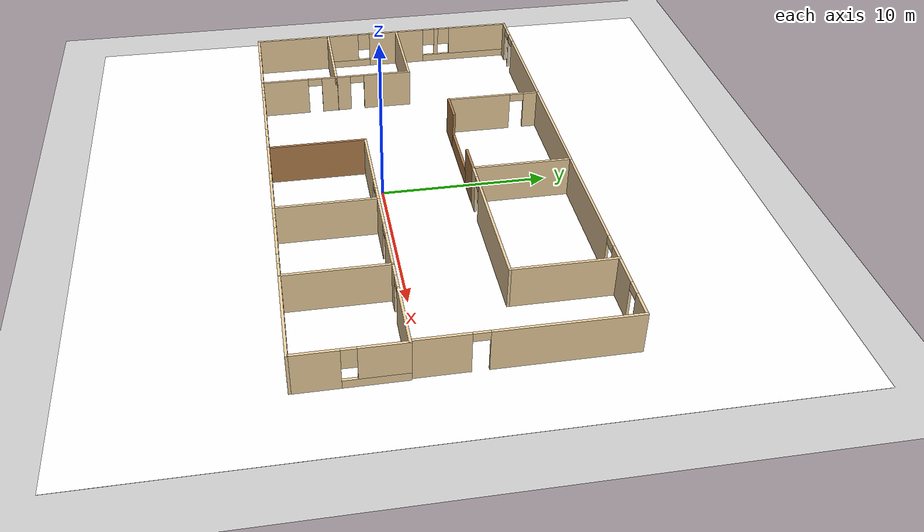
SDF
<sdf version="1.7">
 <world name="default">
  <model name="ground_plane">
   <static>1</static>
   <link name="link">
    <collision name="collision">
     <geometry><plane><normal>0 0 1</normal><size>100 100</size></plane></geometry>
     <surface><friction><ode><mu>100</mu><mu2>50</mu2></ode></friction></surface>
    </collision>
    <visual name="visual">
     <cast_shadows>0</cast_shadows>
     <geometry><plane><normal>0 0 1</normal><size>100 100</size></plane></geometry>
     <material>
      <script><uri>file://media/materials/scripts/gazebo.material</uri><name>Gazebo/Grey</name></script>
     </material>
    </visual>
   </link>
  </model>
  <model name="hospital_world">
   <pose>-0.19624 2.19188 0 0 -0 0</pose>
   <link name="Wall_100">
    <collision name="Wall_100_Collision">
     <geometry><box><size>2 0.15 2.5</size></box></geometry>
     <pose>0 0 1.25 0 -0 0</pose>
    </collision>
    <visual name="Wall_100_Visual">
     <pose>0 0 1.25 0 -0 0</pose>
     <geometry><box><size>2 0.15 2.5</size></box></geometry>
     <material>
      <script><uri>file://media/materials/scripts/gazebo.material</uri><name>Gazebo/Wood</name></script>
      <ambient>1 1 1 1</ambient>
     </material>
     <meta><layer>0</layer></meta>
    </visual>
    <pose>-4.97509 2.92511 0 0 -0 0</pose>
   </link>
   <link name="Wall_102">
    <collision name="Wall_102_Collision">
     <geometry><box><size>2 0.15 2.5</size></box></geometry>
     <pose>0 0 1.25 0 -0 0</pose>
    </collision>
    <visual name="Wall_102_Visual">
     <pose>0 0 1.25 0 -0 0</pose>
     <geometry><box><size>2 0.15 2.5</size></box></geometry>
     <material>
      <script><uri>file://media/materials/scripts/gazebo.material</uri><name>Gazebo/Wood</name></script>
      <ambient>1 1 1 1</ambient>
     </material>
     <meta><layer>0</layer></meta>
    </visual>
    <pose>1.02491 2.92511 0 0 -0 3.14159</pose>
   </link>
   <link name="Wall_104">
    <collision name="Wall_104_Collision">
     <geometry><box><size>4.3 0.15 1</size></box></geometry>
     <pose>0 0 0.5 0 -0 0</pose>
    </collision>
    <visual name="Wall_104_Visual">
     <pose>0 0 0.5 0 -0 0</pose>
     <geometry><box><size>4.3 0.15 1</size></box></geometry>
     <material>
      <script><uri>file://media/materials/scripts/gazebo.material</uri><name>Gazebo/Wood</name></script>
      <ambient>1 1 1 1</ambient>
     </material>
     <meta><layer>0</layer></meta>
    </visual>
    <pose>-1.97509 2.92511 0 0 -0 0</pose>
   </link>
   <link name="Wall_17">
    <collision name="Wall_17_Collision">
     <geometry><box><size>6 0.15 2.5</size></box></geometry>
     <pose>0 0 1.25 0 -0 0</pose>
    </collision>
    <visual name="Wall_17_Visual">
     <pose>0 0 1.25 0 -0 0</pose>
     <geometry><box><size>6 0.15 2.5</size></box></geometry>
     <material>
      <script><uri>file://media/materials/scripts/gazebo.material</uri><name>Gazebo/Grey</name></script>
      <ambient>0.921569 0.807843 0.615686 1</ambient>
     </material>
     <meta><layer>0</layer></meta>
    </visual>
    <pose>9.9 -5.85 0 0 -0 1.57076</pose>
   </link>
   <link name="Wall_21">
    <pose>6.975 -8.775 0 0 -0 -3.14155</pose>
    <visual name="Wall_21_Visual_0">
     <pose>-2.4903 0 1.25 0 -0 0</pose>
     <geometry><box><size>1.0194 0.15 2.5</size></box></geometry>
     <material>
      <script><uri>file://media/materials/scripts/gazebo.material</uri><name>Gazebo/Grey</name></script>
      <ambient>0.921569 0.807843 0.615686 1</ambient>
     </material>
     <meta><layer>0</layer></meta>
    </visual>
    <collision name="Wall_21_Collision_0">
     <geometry><box><size>1.0194 0.15 2.5</size></box></geometry>
     <pose>-2.4903 0 1.25 0 -0 0</pose>
    </collision>
    <visual name="Wall_21_Visual_1">
     <pose>2.48512 0 1.25 0 -0 0</pose>
     <geometry><box><size>1.02976 0.15 2.5</size></box></geometry>
     <material>
      <script><uri>file://media/materials/scripts/gazebo.material</uri><name>Gazebo/Grey</name></script>
      <ambient>0.921569 0.807843 0.615686 1</ambient>
     </material>
     <meta><layer>0</layer></meta>
    </visual>
    <collision name="Wall_21_Collision_1">
     <geometry><box><size>1.02976 0.15 2.5</size></box></geometry>
     <pose>2.48512 0 1.25 0 -0 0</pose>
    </collision>
    <visual name="Wall_21_Visual_2">
     <pose>-0.455184 0 0.25 0 -0 0</pose>
     <geometry><box><size>3.05084 0.15 0.5</size></box></geometry>
     <material>
      <script><uri>file://media/materials/scripts/gazebo.material</uri><name>Gazebo/Grey</name></script>
      <ambient>0.921569 0.807843 0.615686 1</ambient>
     </material>
     <meta><layer>0</layer></meta>
    </visual>
    <collision name="Wall_21_Collision_2">
     <geometry><box><size>3.05084 0.15 0.5</size></box></geometry>
     <pose>-0.455184 0 0.25 0 -0 0</pose>
    </collision>
    <visual name="Wall_21_Visual_3">
     <pose>-0.055184 0 1.5 0 -0 0</pose>
     <geometry><box><size>2.25084 0.15 2</size></box></geometry>
     <material>
      <script><uri>file://media/materials/scripts/gazebo.material</uri><name>Gazebo/Grey</name></script>
      <ambient>0.921569 0.807843 0.615686 1</ambient>
     </material>
     <meta><layer>0</layer></meta>
    </visual>
    <collision name="Wall_21_Collision_3">
     <geometry><box><size>2.25084 0.15 2</size></box></geometry>
     <pose>-0.055184 0 1.5 0 -0 0</pose>
    </collision>
    <visual name="Wall_21_Visual_4">
     <pose>-1.5806 0 1.9 0 -0 0</pose>
     <geometry><box><size>0.8 0.15 1.2</size></box></geometry>
     <material>
      <script><uri>file://media/materials/scripts/gazebo.material</uri><name>Gazebo/Grey</name></script>
      <ambient>0.921569 0.807843 0.615686 1</ambient>
     </material>
     <meta><layer>0</layer></meta>
    </visual>
    <collision name="Wall_21_Collision_4">
     <geometry><box><size>0.8 0.15 1.2</size></box></geometry>
     <pose>-1.5806 0 1.9 0 -0 0</pose>
    </collision>
    <visual name="Wall_21_Visual_5">
     <pose>1.52024 0 2.25 0 -0 0</pose>
     <geometry><box><size>0.9 0.15 0.5</size></box></geometry>
     <material>
      <script><uri>file://media/materials/scripts/gazebo.material</uri><name>Gazebo/Grey</name></script>
      <ambient>0.921569 0.807843 0.615686 1</ambient>
     </material>
     <meta><layer>0</layer></meta>
    </visual>
    <collision name="Wall_21_Collision_5">
     <geometry><box><size>0.9 0.15 0.5</size></box></geometry>
     <pose>1.52024 0 2.25 0 -0 0</pose>
    </collision>
   </link>
   <link name="Wall_22">
    <collision name="Wall_22_Collision">
     <geometry><box><size>6 0.15 2.5</size></box></geometry>
     <pose>0 0 1.25 0 -0 0</pose>
    </collision>
    <visual name="Wall_22_Visual">
     <pose>0 0 1.25 0 -0 0</pose>
     <geometry><box><size>6 0.15 2.5</size></box></geometry>
     <material>
      <script><uri>file://media/materials/scripts/gazebo.material</uri><name>Gazebo/Grey</name></script>
      <ambient>0.921569 0.807843 0.615686 1</ambient>
     </material>
     <meta><layer>0</layer></meta>
    </visual>
    <pose>4.05009 -5.85011 0 0 -0 1.5708</pose>
   </link>
   <link name="Wall_23">
    <pose>6.97509 -2.92511 0 0 -0 0</pose>
    <visual name="Wall_23_Visual_0">
     <pose>-1.77968 0 1.25 0 -0 0</pose>
     <geometry><box><size>2.44064 0.15 2.5</size></box></geometry>
     <material>
      <script><uri>file://media/materials/scripts/gazebo.material</uri><name>Gazebo/Grey</name></script>
      <ambient>0.921569 0.807843 0.615686 1</ambient>
     </material>
     <meta><layer>0</layer></meta>
    </visual>
    <collision name="Wall_23_Collision_0">
     <geometry><box><size>2.44064 0.15 2.5</size></box></geometry>
     <pose>-1.77968 0 1.25 0 -0 0</pose>
    </collision>
    <visual name="Wall_23_Visual_1">
     <pose>1.67032 0 1.25 0 -0 0</pose>
     <geometry><box><size>2.65936 0.15 2.5</size></box></geometry>
     <material>
      <script><uri>file://media/materials/scripts/gazebo.material</uri><name>Gazebo/Grey</name></script>
      <ambient>0.921569 0.807843 0.615686 1</ambient>
     </material>
     <meta><layer>0</layer></meta>
    </visual>
    <collision name="Wall_23_Collision_1">
     <geometry><box><size>2.65936 0.15 2.5</size></box></geometry>
     <pose>1.67032 0 1.25 0 -0 0</pose>
    </collision>
    <visual name="Wall_23_Visual_2">
     <pose>-0.10936 0 2.25 0 -0 0</pose>
     <geometry><box><size>0.9 0.15 0.5</size></box></geometry>
     <material>
      <script><uri>file://media/materials/scripts/gazebo.material</uri><name>Gazebo/Grey</name></script>
      <ambient>0.921569 0.807843 0.615686 1</ambient>
     </material>
     <meta><layer>0</layer></meta>
    </visual>
    <collision name="Wall_23_Collision_2">
     <geometry><box><size>0.9 0.15 0.5</size></box></geometry>
     <pose>-0.10936 0 2.25 0 -0 0</pose>
    </collision>
   </link>
   <link name="Wall_25">
    <pose>1.00009 -8.77511 0 0 -0 3.14159</pose>
    <visual name="Wall_25_Visual_0">
     <pose>-1.79812 0 1.25 0 -0 0</pose>
     <geometry><box><size>2.65377 0.15 2.5</size></box></geometry>
     <material>
      <script><uri>file://media/materials/scripts/gazebo.material</uri><name>Gazebo/Grey</name></script>
      <ambient>0.921569 0.807843 0.615686 1</ambient>
     </material>
     <meta><layer>0</layer></meta>
    </visual>
    <collision name="Wall_25_Collision_0">
     <geometry><box><size>2.65377 0.15 2.5</size></box></geometry>
     <pose>-1.79812 0 1.25 0 -0 0</pose>
    </collision>
    <visual name="Wall_25_Visual_1">
     <pose>1.32688 0 0.25 0 -0 0</pose>
     <geometry><box><size>3.59623 0.15 0.5</size></box></geometry>
     <material>
      <script><uri>file://media/materials/scripts/gazebo.material</uri><name>Gazebo/Grey</name></script>
      <ambient>0.921569 0.807843 0.615686 1</ambient>
     </material>
     <meta><layer>0</layer></meta>
    </visual>
    <collision name="Wall_25_Collision_1">
     <geometry><box><size>3.59623 0.15 0.5</size></box></geometry>
     <pose>1.32688 0 0.25 0 -0 0</pose>
    </collision>
    <visual name="Wall_25_Visual_2">
     <pose>1.72688 0 1.5 0 -0 0</pose>
     <geometry><box><size>2.79623 0.15 2</size></box></geometry>
     <material>
      <script><uri>file://media/materials/scripts/gazebo.material</uri><name>Gazebo/Grey</name></script>
      <ambient>0.921569 0.807843 0.615686 1</ambient>
     </material>
     <meta><layer>0</layer></meta>
    </visual>
    <collision name="Wall_25_Collision_2">
     <geometry><box><size>2.79623 0.15 2</size></box></geometry>
     <pose>1.72688 0 1.5 0 -0 0</pose>
    </collision>
    <visual name="Wall_25_Visual_3">
     <pose>-0.071231 0 1.9 0 -0 0</pose>
     <geometry><box><size>0.8 0.15 1.2</size></box></geometry>
     <material>
      <script><uri>file://media/materials/scripts/gazebo.material</uri><name>Gazebo/Grey</name></script>
      <ambient>0.921569 0.807843 0.615686 1</ambient>
     </material>
     <meta><layer>0</layer></meta>
    </visual>
    <collision name="Wall_25_Collision_3">
     <geometry><box><size>0.8 0.15 1.2</size></box></geometry>
     <pose>-0.071231 0 1.9 0 -0 0</pose>
    </collision>
   </link>
   <link name="Wall_26">
    <collision name="Wall_26_Collision">
     <geometry><box><size>6 0.15 2.5</size></box></geometry>
     <pose>0 0 1.25 0 -0 0</pose>
    </collision>
    <visual name="Wall_26_Visual">
     <pose>0 0 1.25 0 -0 0</pose>
     <geometry><box><size>6 0.15 2.5</size></box></geometry>
     <material>
      <script><uri>file://media/materials/scripts/gazebo.material</uri><name>Gazebo/Wood</name></script>
      <ambient>0.921569 0.807843 0.615686 1</ambient>
     </material>
     <meta><layer>0</layer></meta>
    </visual>
    <pose>-2.04991 -5.85011 0 0 -0 1.5708</pose>
   </link>
   <link name="Wall_27">
    <pose>1.00009 -2.92511 0 0 -0 0</pose>
    <visual name="Wall_27_Visual_0">
     <pose>-0.959565 0 1.25 0 -0 0</pose>
     <geometry><box><size>4.33087 0.15 2.5</size></box></geometry>
     <material>
      <script><uri>file://media/materials/scripts/gazebo.material</uri><name>Gazebo/Grey</name></script>
      <ambient>0.921569 0.807843 0.615686 1</ambient>
     </material>
     <meta><layer>0</layer></meta>
    </visual>
    <collision name="Wall_27_Collision_0">
     <geometry><box><size>4.33087 0.15 2.5</size></box></geometry>
     <pose>-0.959565 0 1.25 0 -0 0</pose>
    </collision>
    <visual name="Wall_27_Visual_1">
     <pose>2.61544 0 1.25 0 -0 0</pose>
     <geometry><box><size>1.01913 0.15 2.5</size></box></geometry>
     <material>
      <script><uri>file://media/materials/scripts/gazebo.material</uri><name>Gazebo/Grey</name></script>
      <ambient>0.921569 0.807843 0.615686 1</ambient>
     </material>
     <meta><layer>0</layer></meta>
    </visual>
    <collision name="Wall_27_Collision_1">
     <geometry><box><size>1.01913 0.15 2.5</size></box></geometry>
     <pose>2.61544 0 1.25 0 -0 0</pose>
    </collision>
    <visual name="Wall_27_Visual_2">
     <pose>1.65587 0 2.25 0 -0 0</pose>
     <geometry><box><size>0.9 0.15 0.5</size></box></geometry>
     <material>
      <script><uri>file://media/materials/scripts/gazebo.material</uri><name>Gazebo/Grey</name></script>
      <ambient>0.921569 0.807843 0.615686 1</ambient>
     </material>
     <meta><layer>0</layer></meta>
    </visual>
    <collision name="Wall_27_Collision_2">
     <geometry><box><size>0.9 0.15 0.5</size></box></geometry>
     <pose>1.65587 0 2.25 0 -0 0</pose>
    </collision>
   </link>
   <link name="Wall_39">
    <pose>-5.97491 -8.77511 0 0 -0 3.14159</pose>
    <visual name="Wall_39_Visual_0">
     <pose>-3.31601 0 1.25 0 -0 0</pose>
     <geometry><box><size>1.36798 0.15 2.5</size></box></geometry>
     <material>
      <script><uri>file://media/materials/scripts/gazebo.material</uri><name>Gazebo/Grey</name></script>
      <ambient>0.921569 0.807843 0.615686 1</ambient>
     </material>
     <meta><layer>0</layer></meta>
    </visual>
    <collision name="Wall_39_Collision_0">
     <geometry><box><size>1.36798 0.15 2.5</size></box></geometry>
     <pose>-3.31601 0 1.25 0 -0 0</pose>
    </collision>
    <visual name="Wall_39_Visual_1">
     <pose>3.47248 0 1.25 0 -0 0</pose>
     <geometry><box><size>1.05505 0.15 2.5</size></box></geometry>
     <material>
      <script><uri>file://media/materials/scripts/gazebo.material</uri><name>Gazebo/Grey</name></script>
      <ambient>0.921569 0.807843 0.615686 1</ambient>
     </material>
     <meta><layer>0</layer></meta>
    </visual>
    <collision name="Wall_39_Collision_1">
     <geometry><box><size>1.05505 0.15 2.5</size></box></geometry>
     <pose>3.47248 0 1.25 0 -0 0</pose>
    </collision>
    <visual name="Wall_39_Visual_2">
     <pose>-0.293532 0 0.25 0 -0 0</pose>
     <geometry><box><size>4.67697 0.15 0.5</size></box></geometry>
     <material>
      <script><uri>file://media/materials/scripts/gazebo.material</uri><name>Gazebo/Grey</name></script>
      <ambient>0.921569 0.807843 0.615686 1</ambient>
     </material>
     <meta><layer>0</layer></meta>
    </visual>
    <collision name="Wall_39_Collision_2">
     <geometry><box><size>4.67697 0.15 0.5</size></box></geometry>
     <pose>-0.293532 0 0.25 0 -0 0</pose>
    </collision>
    <visual name="Wall_39_Visual_3">
     <pose>0.106468 0 1.5 0 -0 0</pose>
     <geometry><box><size>3.87697 0.15 2</size></box></geometry>
     <material>
      <script><uri>file://media/materials/scripts/gazebo.material</uri><name>Gazebo/Grey</name></script>
      <ambient>0.921569 0.807843 0.615686 1</ambient>
     </material>
     <meta><layer>0</layer></meta>
    </visual>
    <collision name="Wall_39_Collision_3">
     <geometry><box><size>3.87697 0.15 2</size></box></geometry>
     <pose>0.106468 0 1.5 0 -0 0</pose>
    </collision>
    <visual name="Wall_39_Visual_4">
     <pose>-2.23202 0 1.9 0 -0 0</pose>
     <geometry><box><size>0.8 0.15 1.2</size></box></geometry>
     <material>
      <script><uri>file://media/materials/scripts/gazebo.material</uri><name>Gazebo/Grey</name></script>
      <ambient>0.921569 0.807843 0.615686 1</ambient>
     </material>
     <meta><layer>0</layer></meta>
    </visual>
    <collision name="Wall_39_Collision_4">
     <geometry><box><size>0.8 0.15 1.2</size></box></geometry>
     <pose>-2.23202 0 1.9 0 -0 0</pose>
    </collision>
    <visual name="Wall_39_Visual_5">
     <pose>2.49495 0 2.25 0 -0 0</pose>
     <geometry><box><size>0.9 0.15 0.5</size></box></geometry>
     <material>
      <script><uri>file://media/materials/scripts/gazebo.material</uri><name>Gazebo/Grey</name></script>
      <ambient>0.921569 0.807843 0.615686 1</ambient>
     </material>
     <meta><layer>0</layer></meta>
    </visual>
    <collision name="Wall_39_Collision_5">
     <geometry><box><size>0.9 0.15 0.5</size></box></geometry>
     <pose>2.49495 0 2.25 0 -0 0</pose>
    </collision>
   </link>
   <link name="Wall_40">
    <pose>-12.8249 -8.77511 0 0 -0 3.14159</pose>
    <visual name="Wall_40_Visual_0">
     <pose>-1.46725 0 1.25 0 -0 0</pose>
     <geometry><box><size>3.0655 0.15 2.5</size></box></geometry>
     <material>
      <script><uri>file://media/materials/scripts/gazebo.material</uri><name>Gazebo/Grey</name></script>
      <ambient>0.921569 0.807843 0.615686 1</ambient>
     </material>
     <meta><layer>0</layer></meta>
    </visual>
    <collision name="Wall_40_Collision_0">
     <geometry><box><size>3.0655 0.15 2.5</size></box></geometry>
     <pose>-1.46725 0 1.25 0 -0 0</pose>
    </collision>
    <visual name="Wall_40_Visual_1">
     <pose>1.53275 0 0.25 0 -0 0</pose>
     <geometry><box><size>2.9345 0.15 0.5</size></box></geometry>
     <material>
      <script><uri>file://media/materials/scripts/gazebo.material</uri><name>Gazebo/Grey</name></script>
      <ambient>0.921569 0.807843 0.615686 1</ambient>
     </material>
     <meta><layer>0</layer></meta>
    </visual>
    <collision name="Wall_40_Collision_1">
     <geometry><box><size>2.9345 0.15 0.5</size></box></geometry>
     <pose>1.53275 0 0.25 0 -0 0</pose>
    </collision>
    <visual name="Wall_40_Visual_2">
     <pose>1.93275 0 1.5 0 -0 0</pose>
     <geometry><box><size>2.1345 0.15 2</size></box></geometry>
     <material>
      <script><uri>file://media/materials/scripts/gazebo.material</uri><name>Gazebo/Grey</name></script>
      <ambient>0.921569 0.807843 0.615686 1</ambient>
     </material>
     <meta><layer>0</layer></meta>
    </visual>
    <collision name="Wall_40_Collision_2">
     <geometry><box><size>2.1345 0.15 2</size></box></geometry>
     <pose>1.93275 0 1.5 0 -0 0</pose>
    </collision>
    <visual name="Wall_40_Visual_3">
     <pose>0.465498 0 1.9 0 -0 0</pose>
     <geometry><box><size>0.8 0.15 1.2</size></box></geometry>
     <material>
      <script><uri>file://media/materials/scripts/gazebo.material</uri><name>Gazebo/Grey</name></script>
      <ambient>0.921569 0.807843 0.615686 1</ambient>
     </material>
     <meta><layer>0</layer></meta>
    </visual>
    <collision name="Wall_40_Collision_3">
     <geometry><box><size>0.8 0.15 1.2</size></box></geometry>
     <pose>0.465498 0 1.9 0 -0 0</pose>
    </collision>
   </link>
   <link name="Wall_41">
    <collision name="Wall_41_Collision">
     <geometry><box><size>5 0.15 2.5</size></box></geometry>
     <pose>0 0 1.25 0 -0 0</pose>
    </collision>
    <visual name="Wall_41_Visual">
     <pose>0 0 1.25 0 -0 0</pose>
     <geometry><box><size>5 0.15 2.5</size></box></geometry>
     <material>
      <script><uri>file://media/materials/scripts/gazebo.material</uri><name>Gazebo/Grey</name></script>
      <ambient>0.921569 0.807843 0.615686 1</ambient>
     </material>
     <meta><layer>0</layer></meta>
    </visual>
    <pose>-15.7499 -6.35011 0 0 -0 1.5708</pose>
   </link>
   <link name="Wall_42">
    <collision name="Wall_42_Collision">
     <geometry><box><size>6 0.15 2.5</size></box></geometry>
     <pose>0 0 1.25 0 -0 0</pose>
    </collision>
    <visual name="Wall_42_Visual">
     <pose>0 0 1.25 0 -0 0</pose>
     <geometry><box><size>6 0.15 2.5</size></box></geometry>
     <material>
      <script><uri>file://media/materials/scripts/gazebo.material</uri><name>Gazebo/Grey</name></script>
      <ambient>0.921569 0.807843 0.615686 1</ambient>
     </material>
     <meta><layer>0</layer></meta>
    </visual>
    <pose>-12.8249 -3.92511 0 0 -0 0</pose>
   </link>
   <link name="Wall_43">
    <pose>-9.89991 -1.50011 0 0 -0 1.5708</pose>
    <visual name="Wall_43_Visual_0">
     <pose>-1.99454 0 1.25 0 -0 0</pose>
     <geometry><box><size>1.01092 0.15 2.5</size></box></geometry>
     <material>
      <script><uri>file://media/materials/scripts/gazebo.material</uri><name>Gazebo/Grey</name></script>
      <ambient>0.921569 0.807843 0.615686 1</ambient>
     </material>
     <meta><layer>0</layer></meta>
    </visual>
    <collision name="Wall_43_Collision_0">
     <geometry><box><size>1.01092 0.15 2.5</size></box></geometry>
     <pose>-1.99454 0 1.25 0 -0 0</pose>
    </collision>
    <visual name="Wall_43_Visual_1">
     <pose>0.955458 0 1.25 0 -0 0</pose>
     <geometry><box><size>3.08908 0.15 2.5</size></box></geometry>
     <material>
      <script><uri>file://media/materials/scripts/gazebo.material</uri><name>Gazebo/Grey</name></script>
      <ambient>0.921569 0.807843 0.615686 1</ambient>
     </material>
     <meta><layer>0</layer></meta>
    </visual>
    <collision name="Wall_43_Collision_1">
     <geometry><box><size>3.08908 0.15 2.5</size></box></geometry>
     <pose>0.955458 0 1.25 0 -0 0</pose>
    </collision>
    <visual name="Wall_43_Visual_2">
     <pose>-1.03908 0 2.25 0 -0 0</pose>
     <geometry><box><size>0.9 0.15 0.5</size></box></geometry>
     <material>
      <script><uri>file://media/materials/scripts/gazebo.material</uri><name>Gazebo/Grey</name></script>
      <ambient>0.921569 0.807843 0.615686 1</ambient>
     </material>
     <meta><layer>0</layer></meta>
    </visual>
    <collision name="Wall_43_Collision_2">
     <geometry><box><size>0.9 0.15 0.5</size></box></geometry>
     <pose>-1.03908 0 2.25 0 -0 0</pose>
    </collision>
   </link>
   <link name="Wall_44">
    <collision name="Wall_44_Collision">
     <geometry><box><size>6 0.15 2.5</size></box></geometry>
     <pose>0 0 1.25 0 -0 0</pose>
    </collision>
    <visual name="Wall_44_Visual">
     <pose>0 0 1.25 0 -0 0</pose>
     <geometry><box><size>6 0.15 2.5</size></box></geometry>
     <material>
      <script><uri>file://media/materials/scripts/gazebo.material</uri><name>Gazebo/Grey</name></script>
      <ambient>0.921569 0.807843 0.615686 1</ambient>
     </material>
     <meta><layer>0</layer></meta>
    </visual>
    <pose>-12.825 0.925001 0 0 -0 3.14155</pose>
   </link>
   <link name="Wall_45">
    <pose>-15.75 -1.5 0 0 -0 -1.57076</pose>
    <visual name="Wall_45_Visual_0">
     <pose>-1.49533 0 1.25 0 -0 0</pose>
     <geometry><box><size>2.00935 0.15 2.5</size></box></geometry>
     <material>
      <script><uri>file://media/materials/scripts/gazebo.material</uri><name>Gazebo/Grey</name></script>
      <ambient>0.921569 0.807843 0.615686 1</ambient>
     </material>
     <meta><layer>0</layer></meta>
    </visual>
    <collision name="Wall_45_Collision_0">
     <geometry><box><size>2.00935 0.15 2.5</size></box></geometry>
     <pose>-1.49533 0 1.25 0 -0 0</pose>
    </collision>
    <visual name="Wall_45_Visual_1">
     <pose>1.00467 0 0.25 0 -0 0</pose>
     <geometry><box><size>2.99065 0.15 0.5</size></box></geometry>
     <material>
      <script><uri>file://media/materials/scripts/gazebo.material</uri><name>Gazebo/Grey</name></script>
      <ambient>0.921569 0.807843 0.615686 1</ambient>
     </material>
     <meta><layer>0</layer></meta>
    </visual>
    <collision name="Wall_45_Collision_1">
     <geometry><box><size>2.99065 0.15 0.5</size></box></geometry>
     <pose>1.00467 0 0.25 0 -0 0</pose>
    </collision>
    <visual name="Wall_45_Visual_2">
     <pose>1.40467 0 1.5 0 -0 0</pose>
     <geometry><box><size>2.19065 0.15 2</size></box></geometry>
     <material>
      <script><uri>file://media/materials/scripts/gazebo.material</uri><name>Gazebo/Grey</name></script>
      <ambient>0.921569 0.807843 0.615686 1</ambient>
     </material>
     <meta><layer>0</layer></meta>
    </visual>
    <collision name="Wall_45_Collision_2">
     <geometry><box><size>2.19065 0.15 2</size></box></geometry>
     <pose>1.40467 0 1.5 0 -0 0</pose>
    </collision>
    <visual name="Wall_45_Visual_3">
     <pose>-0.090652 0 1.9 0 -0 0</pose>
     <geometry><box><size>0.8 0.15 1.2</size></box></geometry>
     <material>
      <script><uri>file://media/materials/scripts/gazebo.material</uri><name>Gazebo/Grey</name></script>
      <ambient>0.921569 0.807843 0.615686 1</ambient>
     </material>
     <meta><layer>0</layer></meta>
    </visual>
    <collision name="Wall_45_Collision_3">
     <geometry><box><size>0.8 0.15 1.2</size></box></geometry>
     <pose>-0.090652 0 1.9 0 -0 0</pose>
    </collision>
   </link>
   <link name="Wall_47">
    <pose>-9.89991 -6.35011 0 0 -0 -1.5708</pose>
    <visual name="Wall_47_Visual_0">
     <pose>-1.98106 0 1.25 0 -0 0</pose>
     <geometry><box><size>1.03789 0.15 2.5</size></box></geometry>
     <material>
      <script><uri>file://media/materials/scripts/gazebo.material</uri><name>Gazebo/Grey</name></script>
      <ambient>0.921569 0.807843 0.615686 1</ambient>
     </material>
     <meta><layer>0</layer></meta>
    </visual>
    <collision name="Wall_47_Collision_0">
     <geometry><box><size>1.03789 0.15 2.5</size></box></geometry>
     <pose>-1.98106 0 1.25 0 -0 0</pose>
    </collision>
    <visual name="Wall_47_Visual_1">
     <pose>0.968943 0 1.25 0 -0 0</pose>
     <geometry><box><size>3.06211 0.15 2.5</size></box></geometry>
     <material>
      <script><uri>file://media/materials/scripts/gazebo.material</uri><name>Gazebo/Grey</name></script>
      <ambient>0.921569 0.807843 0.615686 1</ambient>
     </material>
     <meta><layer>0</layer></meta>
    </visual>
    <collision name="Wall_47_Collision_1">
     <geometry><box><size>3.06211 0.15 2.5</size></box></geometry>
     <pose>0.968943 0 1.25 0 -0 0</pose>
    </collision>
    <visual name="Wall_47_Visual_2">
     <pose>-1.01211 0 2.25 0 -0 0</pose>
     <geometry><box><size>0.9 0.15 0.5</size></box></geometry>
     <material>
      <script><uri>file://media/materials/scripts/gazebo.material</uri><name>Gazebo/Grey</name></script>
      <ambient>0.921569 0.807843 0.615686 1</ambient>
     </material>
     <meta><layer>0</layer></meta>
    </visual>
    <collision name="Wall_47_Collision_2">
     <geometry><box><size>0.9 0.15 0.5</size></box></geometry>
     <pose>-1.01211 0 2.25 0 -0 0</pose>
    </collision>
   </link>
   <link name="Wall_49">
    <pose>-15.7501 4.85011 0 0 -0 1.5708</pose>
    <visual name="Wall_49_Visual_0">
     <pose>-3.00353 0 1.25 0 -0 0</pose>
     <geometry><box><size>1.99293 0.15 2.5</size></box></geometry>
     <material>
      <script><uri>file://media/materials/scripts/gazebo.material</uri><name>Gazebo/Grey</name></script>
      <ambient>0.921569 0.807843 0.615686 1</ambient>
     </material>
     <meta><layer>0</layer></meta>
    </visual>
    <collision name="Wall_49_Collision_0">
     <geometry><box><size>1.99293 0.15 2.5</size></box></geometry>
     <pose>-3.00353 0 1.25 0 -0 0</pose>
    </collision>
    <visual name="Wall_49_Visual_1">
     <pose>0.996466 0 0.25 0 -0 0</pose>
     <geometry><box><size>6.00707 0.15 0.5</size></box></geometry>
     <material>
      <script><uri>file://media/materials/scripts/gazebo.material</uri><name>Gazebo/Grey</name></script>
      <ambient>0.921569 0.807843 0.615686 1</ambient>
     </material>
     <meta><layer>0</layer></meta>
    </visual>
    <collision name="Wall_49_Collision_1">
     <geometry><box><size>6.00707 0.15 0.5</size></box></geometry>
     <pose>0.996466 0 0.25 0 -0 0</pose>
    </collision>
    <visual name="Wall_49_Visual_2">
     <pose>-1.06092 0 1.5 0 -0 0</pose>
     <geometry><box><size>0.2923 0.15 2</size></box></geometry>
     <material>
      <script><uri>file://media/materials/scripts/gazebo.material</uri><name>Gazebo/Grey</name></script>
      <ambient>0.921569 0.807843 0.615686 1</ambient>
     </material>
     <meta><layer>0</layer></meta>
    </visual>
    <collision name="Wall_49_Collision_2">
     <geometry><box><size>0.2923 0.15 2</size></box></geometry>
     <pose>-1.06092 0 1.5 0 -0 0</pose>
    </collision>
    <visual name="Wall_49_Visual_3">
     <pose>1.94262 0 1.5 0 -0 0</pose>
     <geometry><box><size>4.11477 0.15 2</size></box></geometry>
     <material>
      <script><uri>file://media/materials/scripts/gazebo.material</uri><name>Gazebo/Grey</name></script>
      <ambient>0.921569 0.807843 0.615686 1</ambient>
     </material>
     <meta><layer>0</layer></meta>
    </visual>
    <collision name="Wall_49_Collision_3">
     <geometry><box><size>4.11477 0.15 2</size></box></geometry>
     <pose>1.94262 0 1.5 0 -0 0</pose>
    </collision>
    <visual name="Wall_49_Visual_4">
     <pose>-1.60707 0 1.9 0 -0 0</pose>
     <geometry><box><size>0.8 0.15 1.2</size></box></geometry>
     <material>
      <script><uri>file://media/materials/scripts/gazebo.material</uri><name>Gazebo/Grey</name></script>
      <ambient>0.921569 0.807843 0.615686 1</ambient>
     </material>
     <meta><layer>0</layer></meta>
    </visual>
    <collision name="Wall_49_Collision_4">
     <geometry><box><size>0.8 0.15 1.2</size></box></geometry>
     <pose>-1.60707 0 1.9 0 -0 0</pose>
    </collision>
    <visual name="Wall_49_Visual_5">
     <pose>-0.514768 0 1.9 0 -0 0</pose>
     <geometry><box><size>0.8 0.15 1.2</size></box></geometry>
     <material>
      <script><uri>file://media/materials/scripts/gazebo.material</uri><name>Gazebo/Grey</name></script>
      <ambient>0.921569 0.807843 0.615686 1</ambient>
     </material>
     <meta><layer>0</layer></meta>
    </visual>
    <collision name="Wall_49_Collision_5">
     <geometry><box><size>0.8 0.15 1.2</size></box></geometry>
     <pose>-0.514768 0 1.9 0 -0 0</pose>
    </collision>
   </link>
   <link name="Wall_51">
    <pose>-10.8251 8.77511 0 0 -0 0</pose>
    <visual name="Wall_51_Visual_0">
     <pose>-4.55288 0 1.25 0 -0 0</pose>
     <geometry><box><size>0.894234 0.15 2.5</size></box></geometry>
     <material>
      <script><uri>file://media/materials/scripts/gazebo.material</uri><name>Gazebo/Grey</name></script>
      <ambient>0.921569 0.807843 0.615686 1</ambient>
     </material>
     <meta><layer>0</layer></meta>
    </visual>
    <collision name="Wall_51_Collision_0">
     <geometry><box><size>0.894234 0.15 2.5</size></box></geometry>
     <pose>-4.55288 0 1.25 0 -0 0</pose>
    </collision>
    <visual name="Wall_51_Visual_1">
     <pose>-3.1703 0 1.25 0 -0 0</pose>
     <geometry><box><size>0.070934 0.15 2.5</size></box></geometry>
     <material>
      <script><uri>file://media/materials/scripts/gazebo.material</uri><name>Gazebo/Grey</name></script>
      <ambient>0.921569 0.807843 0.615686 1</ambient>
     </material>
     <meta><layer>0</layer></meta>
    </visual>
    <collision name="Wall_51_Collision_1">
     <geometry><box><size>0.070934 0.15 2.5</size></box></geometry>
     <pose>-3.1703 0 1.25 0 -0 0</pose>
    </collision>
    <visual name="Wall_51_Visual_2">
     <pose>1.38258 0 1.25 0 -0 0</pose>
     <geometry><box><size>7.23483 0.15 2.5</size></box></geometry>
     <material>
      <script><uri>file://media/materials/scripts/gazebo.material</uri><name>Gazebo/Grey</name></script>
      <ambient>0.921569 0.807843 0.615686 1</ambient>
     </material>
     <meta><layer>0</layer></meta>
    </visual>
    <collision name="Wall_51_Collision_2">
     <geometry><box><size>7.23483 0.15 2.5</size></box></geometry>
     <pose>1.38258 0 1.25 0 -0 0</pose>
    </collision>
    <visual name="Wall_51_Visual_3">
     <pose>-3.65577 0 2.25 0 -0 0</pose>
     <geometry><box><size>0.9 0.15 0.5</size></box></geometry>
     <material>
      <script><uri>file://media/materials/scripts/gazebo.material</uri><name>Gazebo/Grey</name></script>
      <ambient>0.921569 0.807843 0.615686 1</ambient>
     </material>
     <meta><layer>0</layer></meta>
    </visual>
    <collision name="Wall_51_Collision_3">
     <geometry><box><size>0.9 0.15 0.5</size></box></geometry>
     <pose>-3.65577 0 2.25 0 -0 0</pose>
    </collision>
    <visual name="Wall_51_Visual_4">
     <pose>-2.68483 0 2.25 0 -0 0</pose>
     <geometry><box><size>0.9 0.15 0.5</size></box></geometry>
     <material>
      <script><uri>file://media/materials/scripts/gazebo.material</uri><name>Gazebo/Grey</name></script>
      <ambient>0.921569 0.807843 0.615686 1</ambient>
     </material>
     <meta><layer>0</layer></meta>
    </visual>
    <collision name="Wall_51_Collision_4">
     <geometry><box><size>0.9 0.15 0.5</size></box></geometry>
     <pose>-2.68483 0 2.25 0 -0 0</pose>
    </collision>
   </link>
   <link name="Wall_53">
    <pose>-5.90009 5.85011 0 0 -0 -1.5708</pose>
    <visual name="Wall_53_Visual_0">
     <pose>-2.48944 0 1.25 0 -0 0</pose>
     <geometry><box><size>1.02112 0.15 2.5</size></box></geometry>
     <material>
      <script><uri>file://media/materials/scripts/gazebo.material</uri><name>Gazebo/Grey</name></script>
      <ambient>0.921569 0.807843 0.615686 1</ambient>
     </material>
     <meta><layer>0</layer></meta>
    </visual>
    <collision name="Wall_53_Collision_0">
     <geometry><box><size>1.02112 0.15 2.5</size></box></geometry>
     <pose>-2.48944 0 1.25 0 -0 0</pose>
    </collision>
    <visual name="Wall_53_Visual_1">
     <pose>0.960559 0 1.25 0 -0 0</pose>
     <geometry><box><size>4.07888 0.15 2.5</size></box></geometry>
     <material>
      <script><uri>file://media/materials/scripts/gazebo.material</uri><name>Gazebo/Grey</name></script>
      <ambient>0.921569 0.807843 0.615686 1</ambient>
     </material>
     <meta><layer>0</layer></meta>
    </visual>
    <collision name="Wall_53_Collision_1">
     <geometry><box><size>4.07888 0.15 2.5</size></box></geometry>
     <pose>0.960559 0 1.25 0 -0 0</pose>
    </collision>
    <visual name="Wall_53_Visual_2">
     <pose>-1.52888 0 2.25 0 -0 0</pose>
     <geometry><box><size>0.9 0.15 0.5</size></box></geometry>
     <material>
      <script><uri>file://media/materials/scripts/gazebo.material</uri><name>Gazebo/Grey</name></script>
      <ambient>0.921569 0.807843 0.615686 1</ambient>
     </material>
     <meta><layer>0</layer></meta>
    </visual>
    <collision name="Wall_53_Collision_2">
     <geometry><box><size>0.9 0.15 0.5</size></box></geometry>
     <pose>-1.52888 0 2.25 0 -0 0</pose>
    </collision>
   </link>
   <link name="Wall_55">
    <collision name="Wall_55_Collision">
     <geometry><box><size>6 0.15 2.5</size></box></geometry>
     <pose>0 0 1.25 0 -0 0</pose>
    </collision>
    <visual name="Wall_55_Visual">
     <pose>0 0 1.25 0 -0 0</pose>
     <geometry><box><size>6 0.15 2.5</size></box></geometry>
     <material>
      <script><uri>file://media/materials/scripts/gazebo.material</uri><name>Gazebo/Grey</name></script>
      <ambient>0.921569 0.807843 0.615686 1</ambient>
     </material>
     <meta><layer>0</layer></meta>
    </visual>
    <pose>1.94991 5.85011 0 0 -0 1.5708</pose>
   </link>
   <link name="Wall_56">
    <collision name="Wall_56_Collision">
     <geometry><box><size>8 0.15 2.5</size></box></geometry>
     <pose>0 0 1.25 0 -0 0</pose>
    </collision>
    <visual name="Wall_56_Visual">
     <pose>0 0 1.25 0 -0 0</pose>
     <geometry><box><size>8 0.15 2.5</size></box></geometry>
     <material>
      <script><uri>file://media/materials/scripts/gazebo.material</uri><name>Gazebo/Grey</name></script>
      <ambient>0.921569 0.807843 0.615686 1</ambient>
     </material>
     <meta><layer>0</layer></meta>
    </visual>
    <pose>-1.97509 8.77511 0 0 -0 3.14159</pose>
   </link>
   <link name="Wall_58">
    <pose>6.62491 8.77511 0 0 -0 0</pose>
    <visual name="Wall_58_Visual_0">
     <pose>-0.982488 0 1.25 0 -0 0</pose>
     <geometry><box><size>7.53503 0.15 2.5</size></box></geometry>
     <material>
      <script><uri>file://media/materials/scripts/gazebo.material</uri><name>Gazebo/Grey</name></script>
      <ambient>0.921569 0.807843 0.615686 1</ambient>
     </material>
     <meta><layer>0</layer></meta>
    </visual>
    <collision name="Wall_58_Collision_0">
     <geometry><box><size>7.53503 0.15 2.5</size></box></geometry>
     <pose>-0.982488 0 1.25 0 -0 0</pose>
    </collision>
    <visual name="Wall_58_Visual_1">
     <pose>4.21751 0 1.25 0 -0 0</pose>
     <geometry><box><size>1.06498 0.15 2.5</size></box></geometry>
     <material>
      <script><uri>file://media/materials/scripts/gazebo.material</uri><name>Gazebo/Grey</name></script>
      <ambient>0.921569 0.807843 0.615686 1</ambient>
     </material>
     <meta><layer>0</layer></meta>
    </visual>
    <collision name="Wall_58_Collision_1">
     <geometry><box><size>1.06498 0.15 2.5</size></box></geometry>
     <pose>4.21751 0 1.25 0 -0 0</pose>
    </collision>
    <visual name="Wall_58_Visual_2">
     <pose>3.23502 0 2.25 0 -0 0</pose>
     <geometry><box><size>0.9 0.15 0.5</size></box></geometry>
     <material>
      <script><uri>file://media/materials/scripts/gazebo.material</uri><name>Gazebo/Grey</name></script>
      <ambient>0.921569 0.807843 0.615686 1</ambient>
     </material>
     <meta><layer>0</layer></meta>
    </visual>
    <collision name="Wall_58_Collision_2">
     <geometry><box><size>0.9 0.15 0.5</size></box></geometry>
     <pose>3.23502 0 2.25 0 -0 0</pose>
    </collision>
   </link>
   <link name="Wall_59">
    <collision name="Wall_59_Collision">
     <geometry><box><size>6 0.15 2.5</size></box></geometry>
     <pose>0 0 1.25 0 -0 0</pose>
    </collision>
    <visual name="Wall_59_Visual">
     <pose>0 0 1.25 0 -0 0</pose>
     <geometry><box><size>6 0.15 2.5</size></box></geometry>
     <material>
      <script><uri>file://media/materials/scripts/gazebo.material</uri><name>Gazebo/Grey</name></script>
      <ambient>0.921569 0.807843 0.615686 1</ambient>
     </material>
     <meta><layer>0</layer></meta>
    </visual>
    <pose>11.2999 5.85011 0 0 -0 -1.5708</pose>
   </link>
   <link name="Wall_60">
    <pose>6.62491 2.92511 0 0 -0 3.14159</pose>
    <visual name="Wall_60_Visual_0">
     <pose>-0.968894 0 1.25 0 -0 0</pose>
     <geometry><box><size>7.56221 0.15 2.5</size></box></geometry>
     <material>
      <script><uri>file://media/materials/scripts/gazebo.material</uri><name>Gazebo/Grey</name></script>
      <ambient>0.921569 0.807843 0.615686 1</ambient>
     </material>
     <meta><layer>0</layer></meta>
    </visual>
    <collision name="Wall_60_Collision_0">
     <geometry><box><size>7.56221 0.15 2.5</size></box></geometry>
     <pose>-0.968894 0 1.25 0 -0 0</pose>
    </collision>
    <visual name="Wall_60_Visual_1">
     <pose>4.23111 0 1.25 0 -0 0</pose>
     <geometry><box><size>1.03779 0.15 2.5</size></box></geometry>
     <material>
      <script><uri>file://media/materials/scripts/gazebo.material</uri><name>Gazebo/Grey</name></script>
      <ambient>0.921569 0.807843 0.615686 1</ambient>
     </material>
     <meta><layer>0</layer></meta>
    </visual>
    <collision name="Wall_60_Collision_1">
     <geometry><box><size>1.03779 0.15 2.5</size></box></geometry>
     <pose>4.23111 0 1.25 0 -0 0</pose>
    </collision>
    <visual name="Wall_60_Visual_2">
     <pose>3.26221 0 2.25 0 -0 0</pose>
     <geometry><box><size>0.9 0.15 0.5</size></box></geometry>
     <material>
      <script><uri>file://media/materials/scripts/gazebo.material</uri><name>Gazebo/Grey</name></script>
      <ambient>0.921569 0.807843 0.615686 1</ambient>
     </material>
     <meta><layer>0</layer></meta>
    </visual>
    <collision name="Wall_60_Collision_2">
     <geometry><box><size>0.9 0.15 0.5</size></box></geometry>
     <pose>3.26221 0 2.25 0 -0 0</pose>
    </collision>
   </link>
   <link name="Wall_83">
    <pose>13.4749 8.77511 0 0 -0 0</pose>
    <visual name="Wall_83_Visual_0">
     <pose>-1.24216 0 1.25 0 -0 0</pose>
     <geometry><box><size>2.01568 0.15 2.5</size></box></geometry>
     <material>
      <script><uri>file://media/materials/scripts/gazebo.material</uri><name>Gazebo/Grey</name></script>
      <ambient>0.921569 0.807843 0.615686 1</ambient>
     </material>
     <meta><layer>0</layer></meta>
    </visual>
    <collision name="Wall_83_Collision_0">
     <geometry><box><size>2.01568 0.15 2.5</size></box></geometry>
     <pose>-1.24216 0 1.25 0 -0 0</pose>
    </collision>
    <visual name="Wall_83_Visual_1">
     <pose>1.45784 0 1.25 0 -0 0</pose>
     <geometry><box><size>1.58432 0.15 2.5</size></box></geometry>
     <material>
      <script><uri>file://media/materials/scripts/gazebo.material</uri><name>Gazebo/Grey</name></script>
      <ambient>0.921569 0.807843 0.615686 1</ambient>
     </material>
     <meta><layer>0</layer></meta>
    </visual>
    <collision name="Wall_83_Collision_1">
     <geometry><box><size>1.58432 0.15 2.5</size></box></geometry>
     <pose>1.45784 0 1.25 0 -0 0</pose>
    </collision>
    <visual name="Wall_83_Visual_2">
     <pose>0.21568 0 2.25 0 -0 0</pose>
     <geometry><box><size>0.9 0.15 0.5</size></box></geometry>
     <material>
      <script><uri>file://media/materials/scripts/gazebo.material</uri><name>Gazebo/Grey</name></script>
      <ambient>0.921569 0.807843 0.615686 1</ambient>
     </material>
     <meta><layer>0</layer></meta>
    </visual>
    <collision name="Wall_83_Collision_2">
     <geometry><box><size>0.9 0.15 0.5</size></box></geometry>
     <pose>0.21568 0 2.25 0 -0 0</pose>
    </collision>
   </link>
   <link name="Wall_88">
    <pose>15.6499 2.97512 0 0 -0 -1.5708</pose>
    <visual name="Wall_88_Visual_0">
     <pose>-1.95097 0 1.25 0 -0 0</pose>
     <geometry><box><size>7.84806 0.15 2.5</size></box></geometry>
     <material>
      <script><uri>file://media/materials/scripts/gazebo.material</uri><name>Gazebo/Grey</name></script>
      <ambient>0.921569 0.807843 0.615686 1</ambient>
     </material>
     <meta><layer>0</layer></meta>
    </visual>
    <collision name="Wall_88_Collision_0">
     <geometry><box><size>7.84806 0.15 2.5</size></box></geometry>
     <pose>-1.95097 0 1.25 0 -0 0</pose>
    </collision>
    <visual name="Wall_88_Visual_1">
     <pose>4.37403 0 1.25 0 -0 0</pose>
     <geometry><box><size>3.00194 0.15 2.5</size></box></geometry>
     <material>
      <script><uri>file://media/materials/scripts/gazebo.material</uri><name>Gazebo/Grey</name></script>
      <ambient>0.921569 0.807843 0.615686 1</ambient>
     </material>
     <meta><layer>0</layer></meta>
    </visual>
    <collision name="Wall_88_Collision_1">
     <geometry><box><size>3.00194 0.15 2.5</size></box></geometry>
     <pose>4.37403 0 1.25 0 -0 0</pose>
    </collision>
    <visual name="Wall_88_Visual_2">
     <pose>2.42306 0 2.25 0 -0 0</pose>
     <geometry><box><size>0.9 0.15 0.5</size></box></geometry>
     <material>
      <script><uri>file://media/materials/scripts/gazebo.material</uri><name>Gazebo/Grey</name></script>
      <ambient>0.921569 0.807843 0.615686 1</ambient>
     </material>
     <meta><layer>0</layer></meta>
    </visual>
    <collision name="Wall_88_Collision_2">
     <geometry><box><size>0.9 0.15 0.5</size></box></geometry>
     <pose>2.42306 0 2.25 0 -0 0</pose>
    </collision>
   </link>
   <link name="Wall_94">
    <pose>12.8251 -2.92511 0 0 -0 0</pose>
    <visual name="Wall_94_Visual_0">
     <pose>-2.49571 0 1.25 0 -0 0</pose>
     <geometry><box><size>1.00859 0.15 2.5</size></box></geometry>
     <material>
      <script><uri>file://media/materials/scripts/gazebo.material</uri><name>Gazebo/Grey</name></script>
      <ambient>0.921569 0.807843 0.615686 1</ambient>
     </material>
     <meta><layer>0</layer></meta>
    </visual>
    <collision name="Wall_94_Collision_0">
     <geometry><box><size>1.00859 0.15 2.5</size></box></geometry>
     <pose>-2.49571 0 1.25 0 -0 0</pose>
    </collision>
    <visual name="Wall_94_Visual_1">
     <pose>0.954293 0 1.25 0 -0 0</pose>
     <geometry><box><size>4.09141 0.15 2.5</size></box></geometry>
     <material>
      <script><uri>file://media/materials/scripts/gazebo.material</uri><name>Gazebo/Grey</name></script>
      <ambient>0.921569 0.807843 0.615686 1</ambient>
     </material>
     <meta><layer>0</layer></meta>
    </visual>
    <collision name="Wall_94_Collision_1">
     <geometry><box><size>4.09141 0.15 2.5</size></box></geometry>
     <pose>0.954293 0 1.25 0 -0 0</pose>
    </collision>
    <visual name="Wall_94_Visual_2">
     <pose>-1.54141 0 2.25 0 -0 0</pose>
     <geometry><box><size>0.9 0.15 0.5</size></box></geometry>
     <material>
      <script><uri>file://media/materials/scripts/gazebo.material</uri><name>Gazebo/Grey</name></script>
      <ambient>0.921569 0.807843 0.615686 1</ambient>
     </material>
     <meta><layer>0</layer></meta>
    </visual>
    <collision name="Wall_94_Collision_2">
     <geometry><box><size>0.9 0.15 0.5</size></box></geometry>
     <pose>-1.54141 0 2.25 0 -0 0</pose>
    </collision>
   </link>
   <link name="Wall_97">
    <collision name="Wall_97_Collision">
     <geometry><box><size>6 0.15 2.5</size></box></geometry>
     <pose>0 0 1.25 0 -0 0</pose>
    </collision>
    <visual name="Wall_97_Visual">
     <pose>0 0 1.25 0 -0 0</pose>
     <geometry><box><size>6 0.15 2.5</size></box></geometry>
     <material>
      <script><uri>file://media/materials/scripts/gazebo.material</uri><name>Gazebo/Grey</name></script>
      <ambient>0.921569 0.807843 0.615686 1</ambient>
     </material>
     <meta><layer>0</layer></meta>
    </visual>
    <pose>12.8249 -8.77488 0 0 -0 0</pose>
   </link>
   <link name="Wall_98">
    <pose>15.75 -5.85 0 0 -0 1.57076</pose>
    <visual name="Wall_98_Visual_0">
     <pose>-1.70473 0 1.25 0 -0 0</pose>
     <geometry><box><size>2.59055 0.15 2.5</size></box></geometry>
     <material>
      <script><uri>file://media/materials/scripts/gazebo.material</uri><name>Gazebo/Grey</name></script>
      <ambient>0.921569 0.807843 0.615686 1</ambient>
     </material>
     <meta><layer>0</layer></meta>
    </visual>
    <collision name="Wall_98_Collision_0">
     <geometry><box><size>2.59055 0.15 2.5</size></box></geometry>
     <pose>-1.70473 0 1.25 0 -0 0</pose>
    </collision>
    <visual name="Wall_98_Visual_1">
     <pose>1.29527 0 0.25 0 -0 0</pose>
     <geometry><box><size>3.40945 0.15 0.5</size></box></geometry>
     <material>
      <script><uri>file://media/materials/scripts/gazebo.material</uri><name>Gazebo/Grey</name></script>
      <ambient>0.921569 0.807843 0.615686 1</ambient>
     </material>
     <meta><layer>0</layer></meta>
    </visual>
    <collision name="Wall_98_Collision_1">
     <geometry><box><size>3.40945 0.15 0.5</size></box></geometry>
     <pose>1.29527 0 0.25 0 -0 0</pose>
    </collision>
    <visual name="Wall_98_Visual_2">
     <pose>1.69527 0 1.5 0 -0 0</pose>
     <geometry><box><size>2.60945 0.15 2</size></box></geometry>
     <material>
      <script><uri>file://media/materials/scripts/gazebo.material</uri><name>Gazebo/Grey</name></script>
      <ambient>0.921569 0.807843 0.615686 1</ambient>
     </material>
     <meta><layer>0</layer></meta>
    </visual>
    <collision name="Wall_98_Collision_2">
     <geometry><box><size>2.60945 0.15 2</size></box></geometry>
     <pose>1.69527 0 1.5 0 -0 0</pose>
    </collision>
    <visual name="Wall_98_Visual_3">
     <pose>-0.009453 0 1.9 0 -0 0</pose>
     <geometry><box><size>0.8 0.15 1.2</size></box></geometry>
     <material>
      <script><uri>file://media/materials/scripts/gazebo.material</uri><name>Gazebo/Grey</name></script>
      <ambient>0.921569 0.807843 0.615686 1</ambient>
     </material>
     <meta><layer>0</layer></meta>
    </visual>
    <collision name="Wall_98_Collision_3">
     <geometry><box><size>0.8 0.15 1.2</size></box></geometry>
     <pose>-0.009453 0 1.9 0 -0 0</pose>
    </collision>
   </link>
   <static>1</static>
   <link name="Floor">
    <visual name="Floor_Visual">
     <geometry><box><size>40 40 0.01</size></box></geometry>
     <material>
      <ambient>1 1 1 1</ambient>
      <diffuse>1 1 1 1</diffuse>
      <specular>1 1 1 1</specular>
      <emissive>0 0 0 1</emissive>
     </material>
    </visual>
    <collision name="Floor_Collision"><geometry><box><size>40 40 0.01</size></box></geometry></collision>
   </link>
  </model>
 </world>
</sdf>
